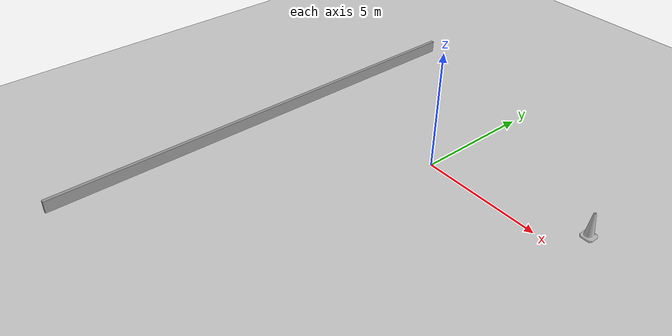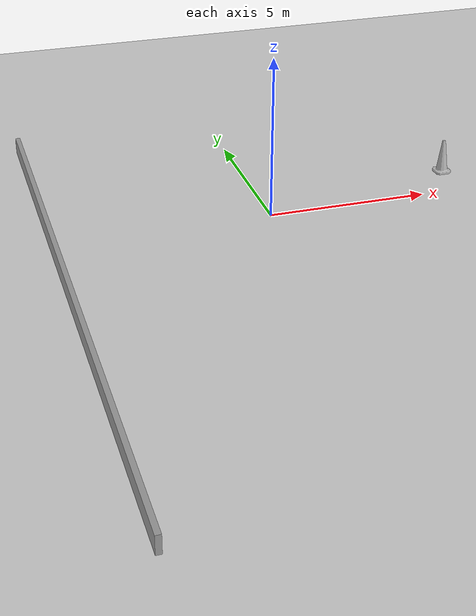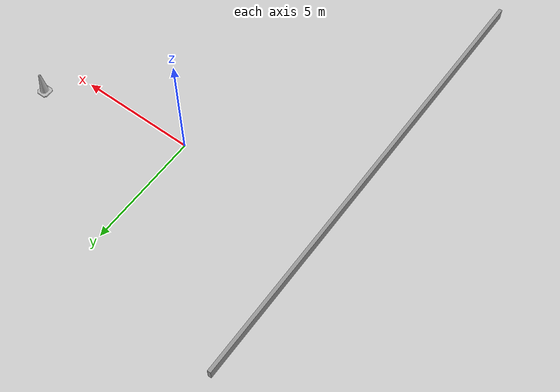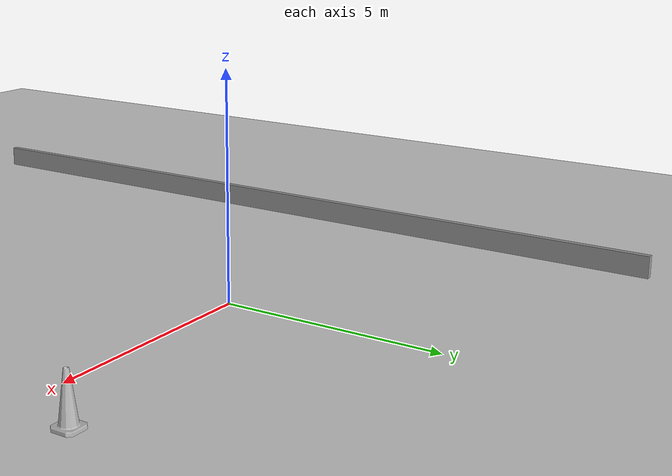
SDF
<sdf version="1.6">
 <world name="default">
  <light name="sun" type="directional">
   <pose>0 0 10 0 -0 0</pose>
   <diffuse>0.8 0.8 0.8 1</diffuse>
   <specular>0.1 0.1 0.1 1</specular>
   <attenuation>
    <range>1000</range>
    <constant>0.9</constant>
    <linear>0.01</linear>
    <quadratic>0.001</quadratic>
   </attenuation>
   <direction>-0.5 0.5 -1</direction>
  </light>
  <model name="ground_plane">
   <static>1</static>
   <link name="link">
    <collision name="collision">
     <geometry><plane><normal>0 0 1</normal><size>100 100</size></plane></geometry>
     <surface><friction><ode><mu>100</mu><mu2>50</mu2></ode></friction></surface>
    </collision>
    <visual name="visual">
     <cast_shadows>0</cast_shadows>
     <geometry><plane><normal>0 0 1</normal><size>100 100</size></plane></geometry>
     <material>
      <script><uri>file://media/materials/scripts/gazebo.material</uri><name>Gazebo/Grey</name></script>
     </material>
    </visual>
   </link>
  </model>
  <gravity>0 0 -9.8</gravity>
  <magnetic_field>6e-06 2.3e-05 -4.2e-05</magnetic_field>
  <atmosphere type="adiabatic"/>
  <physics name="default_physics" default="0" type="ode">
   <max_step_size>0.001</max_step_size>
   <real_time_factor>1</real_time_factor>
   <real_time_update_rate>1000</real_time_update_rate>
  </physics>
  <scene><ambient>0.4 0.4 0.4 1</ambient><background>0.7 0.7 0.7 1</background><shadows>1</shadows></scene>
  <spherical_coordinates>
   <surface_model>EARTH_WGS84</surface_model>
   <latitude_deg>0</latitude_deg>
   <longitude_deg>0</longitude_deg>
   <elevation>0</elevation>
   <heading_deg>0</heading_deg>
  </spherical_coordinates>
  <model name="runway">
   <pose>6.11551 -3.175 0 0 -0 0</pose>
   <link name="Wall_0">
    <collision name="Wall_0_Collision"><geometry><box><size>40 0.15 1</size></box></geometry></collision>
    <visual name="Wall_0_Visual">
     <geometry><box><size>20 0.15 1</size></box></geometry>
     <material>
      <script><uri>file://media/materials/scripts/gazebo.material</uri><name>Gazebo/Grey</name></script>
      <ambient>1 1 1 1</ambient>
     </material>
    </visual>
    <pose>-12.8055 0 0 0 0 -1.5708</pose>
   </link>
   <link name="Wall_1">
    <collision name="Wall_1_Collision"><geometry><box><size>40 0.15 1</size></box></geometry></collision>
    <visual name="Wall_1_Visual">
     <geometry><box><size>20 0.15 1</size></box></geometry>
     <material>
      <script><uri>file://media/materials/scripts/gazebo.material</uri><name>Gazebo/Grey</name></script>
      <ambient>1 1 1 1</ambient>
     </material>
    </visual>
    <pose>-12.8055 0 0 0 0 -1.5708</pose>
   </link>
   <link name="Wall_2">
    <collision name="Wall_2_Collision"><geometry><box><size>40 0.15 1</size></box></geometry></collision>
    <visual name="Wall_2_Visual">
     <geometry><box><size>20 0.15 1</size></box></geometry>
     <material>
      <script><uri>file://media/materials/scripts/gazebo.material</uri><name>Gazebo/Grey</name></script>
      <ambient>1 1 1 1</ambient>
     </material>
    </visual>
    <pose>-12.8055 0 0 0 0 -1.5708</pose>
   </link>
   <link name="Wall_3">
    <collision name="Wall_3_Collision"><geometry><box><size>40 0.15 1</size></box></geometry></collision>
    <visual name="Wall_3_Visual">
     <geometry><box><size>20 0.15 1</size></box></geometry>
     <material>
      <script><uri>file://media/materials/scripts/gazebo.material</uri><name>Gazebo/Grey</name></script>
      <ambient>1 1 1 1</ambient>
     </material>
    </visual>
    <pose>-12.8055 0 0 0 0 -1.5708</pose>
   </link>
   <model name="Construction Cone">
    <static>1</static>
    <link name="link">
     <collision name="collision">
      <geometry>
       <mesh><scale>10 10 10</scale><uri>model://construction_cone/meshes/construction_cone.dae</uri></mesh>
      </geometry>
     </collision>
     <visual name="visual">
      <geometry>
       <mesh><scale>10 10 10</scale><uri>model://construction_cone/meshes/construction_cone.dae</uri></mesh>
      </geometry>
     </visual>
    </link>
    <pose>0.183053 4.55016 0 0 -0 0</pose>
   </model>
   <static>1</static>
  </model>
 </world>
</sdf>
